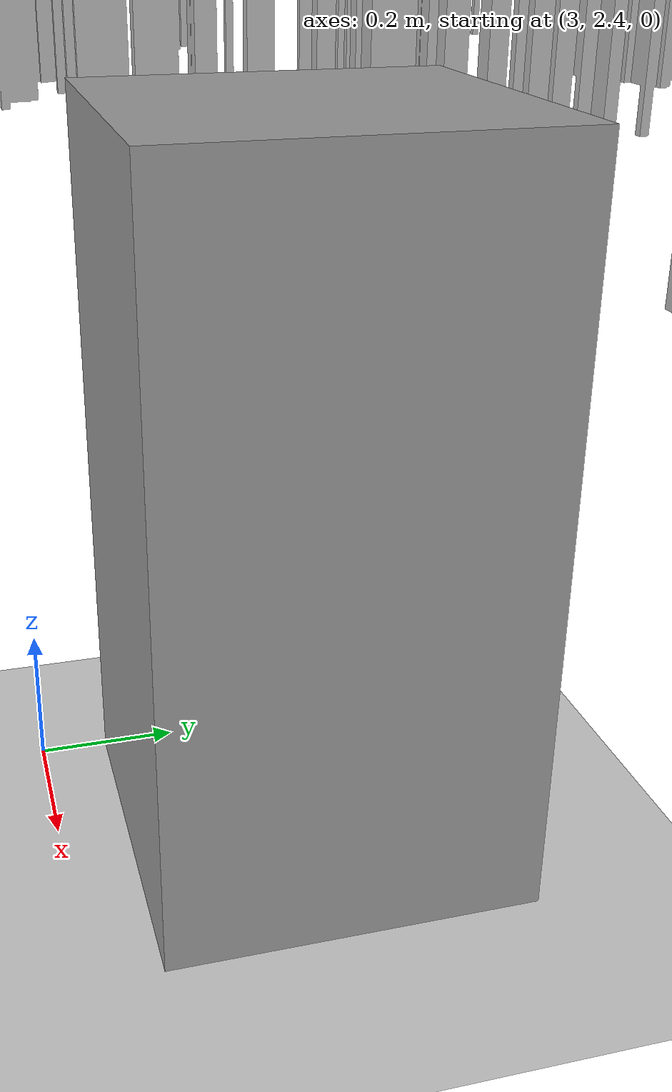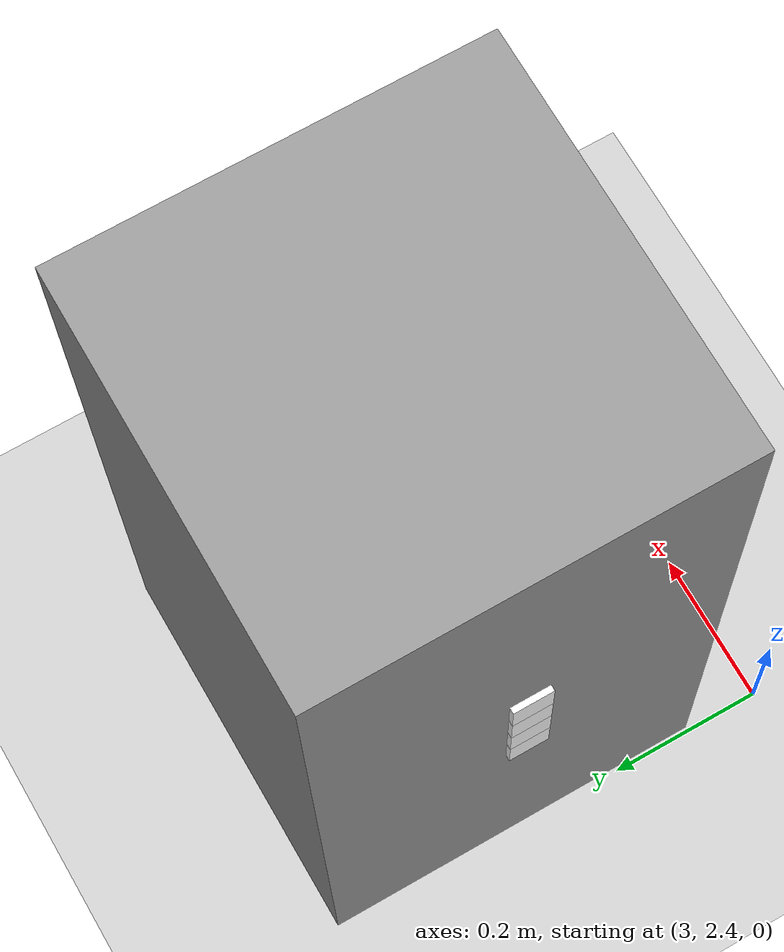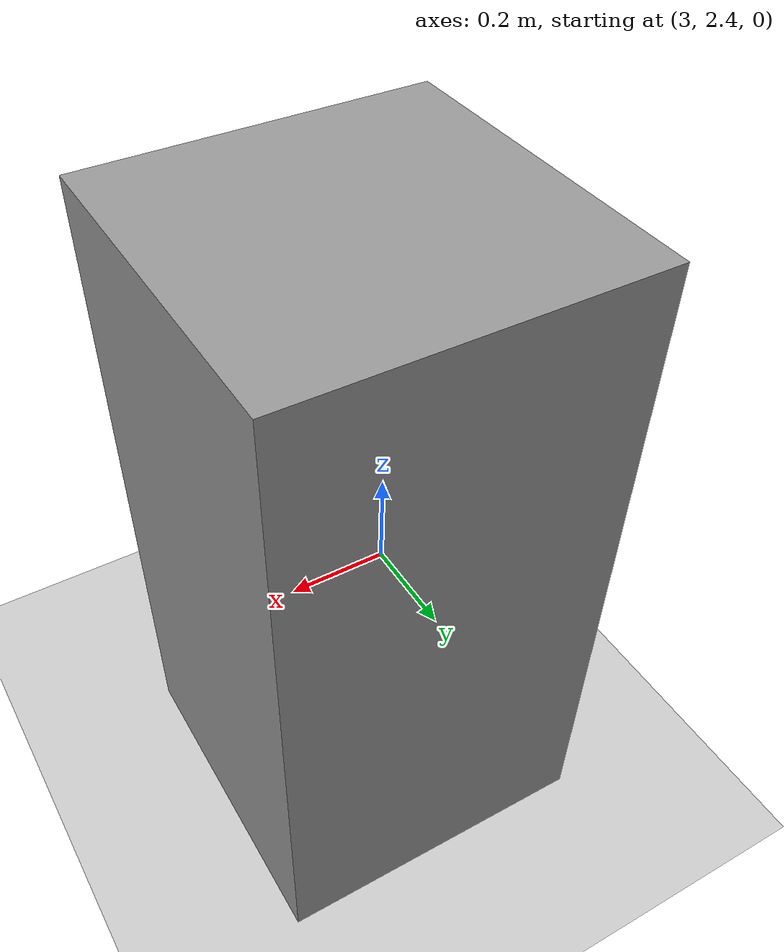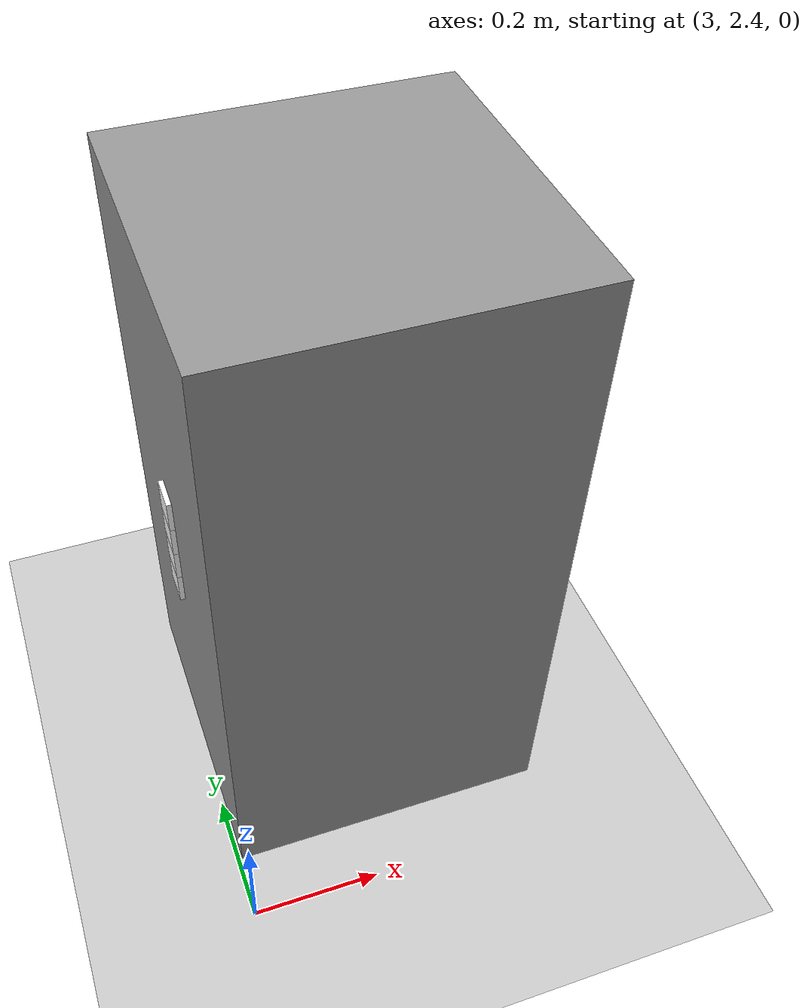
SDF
<sdf version="1.7">
 <world name="default">
  <model name="ground_plane">
   <static>1</static>
   <link name="link">
    <collision name="collision">
     <geometry><plane><normal>0 0 1</normal><size>100 100</size></plane></geometry>
     <surface>
      <contact><collide_bitmask>65535</collide_bitmask></contact>
      <friction><ode><mu>100</mu><mu2>50</mu2></ode></friction>
     </surface>
    </collision>
    <visual name="visual">
     <cast_shadows>0</cast_shadows>
     <geometry><plane><normal>0 0 1</normal><size>100 100</size></plane></geometry>
     <material>
      <script><uri>file://media/materials/scripts/gazebo.material</uri><name>Gazebo/Grey</name></script>
     </material>
    </visual>
   </link>
  </model>
  <light name="sun" type="directional">
   <pose>0 0 10 0 -0 0</pose>
   <diffuse>0.8 0.8 0.8 1</diffuse>
   <specular>0.2 0.2 0.2 1</specular>
   <attenuation>
    <range>1000</range>
    <constant>0.9</constant>
    <linear>0.01</linear>
    <quadratic>0.001</quadratic>
   </attenuation>
   <direction>-0.5 0.1 -0.9</direction>
   <spot><inner_angle>0</inner_angle><outer_angle>0</outer_angle><falloff>0</falloff></spot>
  </light>
  <model name="map">
   <link name="link">
    <inertial>
     <mass>15</mass>
     <inertia><ixx>0</ixx><ixy>0</ixy><ixz>0</ixz><iyy>0</iyy><iyz>0</iyz><izz>0</izz></inertia>
    </inertial>
    <collision name="collision">
     <geometry><mesh><uri>model://map/meshes/map.stl</uri></mesh></geometry>
    </collision>
    <visual name="visual"><geometry><mesh><uri>model://map/meshes/map.stl</uri></mesh></geometry></visual>
   </link>
   <static>1</static>
  </model>
  <gravity>0 0 -9.8</gravity>
  <magnetic_field>6e-06 2.3e-05 -4.2e-05</magnetic_field>
  <atmosphere type="adiabatic"/>
  <physics type="ode">
   <max_step_size>0.001</max_step_size>
   <real_time_factor>1</real_time_factor>
   <real_time_update_rate>1000</real_time_update_rate>
  </physics>
  <scene><ambient>0.4 0.4 0.4 1</ambient><background>0.7 0.7 0.7 1</background><shadows>1</shadows></scene>
  <spherical_coordinates>
   <surface_model>EARTH_WGS84</surface_model>
   <latitude_deg>0</latitude_deg>
   <longitude_deg>0</longitude_deg>
   <elevation>0</elevation>
   <heading_deg>0</heading_deg>
  </spherical_coordinates>
  <model name="Apriltags_4_piller">
   <link name="1st_tag">
    <pose>-0.51 0 0.425 0 -0 0</pose>
    <inertial>
     <mass>1</mass>
     <inertia><ixx>1</ixx><ixy>0</ixy><ixz>0</ixz><iyy>1</iyy><iyz>0</iyz><izz>1</izz></inertia>
    </inertial>
    <visual name="main_Visual">
     <geometry><box><size>0.01 0.05 0.05</size></box></geometry>
     <material>
      <script>
       <uri>model://Apriltag36_11_00000/materials/scripts</uri>
       <uri>model://Apriltag36_11_00000/materials/textures</uri>
       <name>Apriltag36_11_00000</name>
      </script>
      <shader type="pixel"><normal_map>__default__</normal_map></shader>
      <ambient>1 1 1 1</ambient>
      <diffuse>1 1 1 1</diffuse>
      <specular>0 0 0 1</specular>
      <emissive>0 0 0 1</emissive>
     </material>
    </visual>
   </link>
   <link name="2nd_tag">
    <pose>-0.51 0 0.475 0 -0 0</pose>
    <inertial>
     <mass>1</mass>
     <inertia><ixx>1</ixx><ixy>0</ixy><ixz>0</ixz><iyy>1</iyy><iyz>0</iyz><izz>1</izz></inertia>
    </inertial>
    <visual name="main_Visual">
     <geometry><box><size>0.01 0.05 0.05</size></box></geometry>
     <material>
      <script>
       <uri>model://Apriltag36_11_00001/materials/scripts</uri>
       <uri>model://Apriltag36_11_00001/materials/textures</uri>
       <name>Apriltag36_11_00001</name>
      </script>
      <shader type="pixel"><normal_map>__default__</normal_map></shader>
      <ambient>1 1 1 1</ambient>
      <diffuse>1 1 1 1</diffuse>
      <specular>0 0 0 1</specular>
      <emissive>0 0 0 1</emissive>
     </material>
    </visual>
   </link>
   <link name="3rd_tag">
    <pose>-0.51 0 0.525 0 -0 0</pose>
    <inertial>
     <mass>1</mass>
     <inertia><ixx>1</ixx><ixy>0</ixy><ixz>0</ixz><iyy>1</iyy><iyz>0</iyz><izz>1</izz></inertia>
    </inertial>
    <visual name="main_Visual">
     <geometry><box><size>0.01 0.05 0.05</size></box></geometry>
     <material>
      <script>
       <uri>model://Apriltag36_11_00002/materials/scripts</uri>
       <uri>model://Apriltag36_11_00002/materials/textures</uri>
       <name>Apriltag36_11_00002</name>
      </script>
      <shader type="pixel"><normal_map>__default__</normal_map></shader>
      <ambient>1 1 1 1</ambient>
      <diffuse>1 1 1 1</diffuse>
      <specular>0 0 0 1</specular>
      <emissive>0 0 0 1</emissive>
     </material>
    </visual>
   </link>
   <link name="4th_tag">
    <pose>-0.51 0 0.575 0 -0 0</pose>
    <inertial>
     <mass>1</mass>
     <inertia><ixx>1</ixx><ixy>0</ixy><ixz>0</ixz><iyy>1</iyy><iyz>0</iyz><izz>1</izz></inertia>
    </inertial>
    <visual name="main_Visual">
     <geometry><box><size>0.01 0.05 0.05</size></box></geometry>
     <material>
      <script>
       <uri>model://Apriltag36_11_00003/materials/scripts</uri>
       <uri>model://Apriltag36_11_00003/materials/textures</uri>
       <name>Apriltag36_11_00003</name>
      </script>
      <shader type="pixel"><normal_map>__default__</normal_map></shader>
      <ambient>1 1 1 1</ambient>
      <diffuse>1 1 1 1</diffuse>
      <specular>0 0 0 1</specular>
      <emissive>0 0 0 1</emissive>
     </material>
    </visual>
   </link>
   <link name="link_2">
    <inertial>
     <mass>1</mass>
     <inertia>
      <ixx>0.166667</ixx>
      <ixy>0</ixy>
      <ixz>0</ixz>
      <iyy>0.166667</iyy>
      <iyz>0</iyz>
      <izz>0.166667</izz>
     </inertia>
    </inertial>
    <pose>-0.257406 0.004288 0.5 0 -0 0</pose>
    <visual name="visual">
     <geometry><box><size>0.5 0.5 1</size></box></geometry>
     <material>
      <lighting>1</lighting>
      <script><uri>file://media/materials/scripts/gazebo.material</uri><name>Gazebo/Grey</name></script>
      <shader type="pixel"><normal_map>__default__</normal_map></shader>
      <ambient>0.3 0.3 0.3 1</ambient>
      <diffuse>0.7 0.7 0.7 1</diffuse>
      <specular>0.01 0.01 0.01 1</specular>
      <emissive>0 0 0 1</emissive>
     </material>
    </visual>
    <collision name="collision">
     <geometry><box><size>0.5 0.5 1</size></box></geometry>
     <surface>
      <friction>
       <ode><mu>1</mu><mu2>1</mu2><fdir1>0 0 0</fdir1><slip1>0</slip1><slip2>0</slip2></ode>
       <torsional>
        <coefficient>1</coefficient>
        <patch_radius>0</patch_radius>
        <surface_radius>0</surface_radius>
        <use_patch_radius>1</use_patch_radius>
        <ode><slip>0</slip></ode>
       </torsional>
      </friction>
      <bounce><restitution_coefficient>0</restitution_coefficient><threshold>1e+06</threshold></bounce>
      <contact>
       <collide_without_contact>0</collide_without_contact>
       <collide_without_contact_bitmask>1</collide_without_contact_bitmask>
       <collide_bitmask>1</collide_bitmask>
       <ode>
        <soft_cfm>0</soft_cfm>
        <soft_erp>0.2</soft_erp>
        <kp>1e+13</kp>
        <kd>1</kd>
        <max_vel>0.01</max_vel>
        <min_depth>0</min_depth>
       </ode>
       <bullet>
        <split_impulse>1</split_impulse>
        <split_impulse_penetration_threshold>-0.01</split_impulse_penetration_threshold>
        <soft_cfm>0</soft_cfm>
        <soft_erp>0.2</soft_erp>
        <kp>1e+13</kp>
        <kd>1</kd>
       </bullet>
      </contact>
     </surface>
    </collision>
   </link>
   <static>1</static>
   <pose>3.51308 2.74165 0 0 -0 0</pose>
  </model>
 </world>
</sdf>
